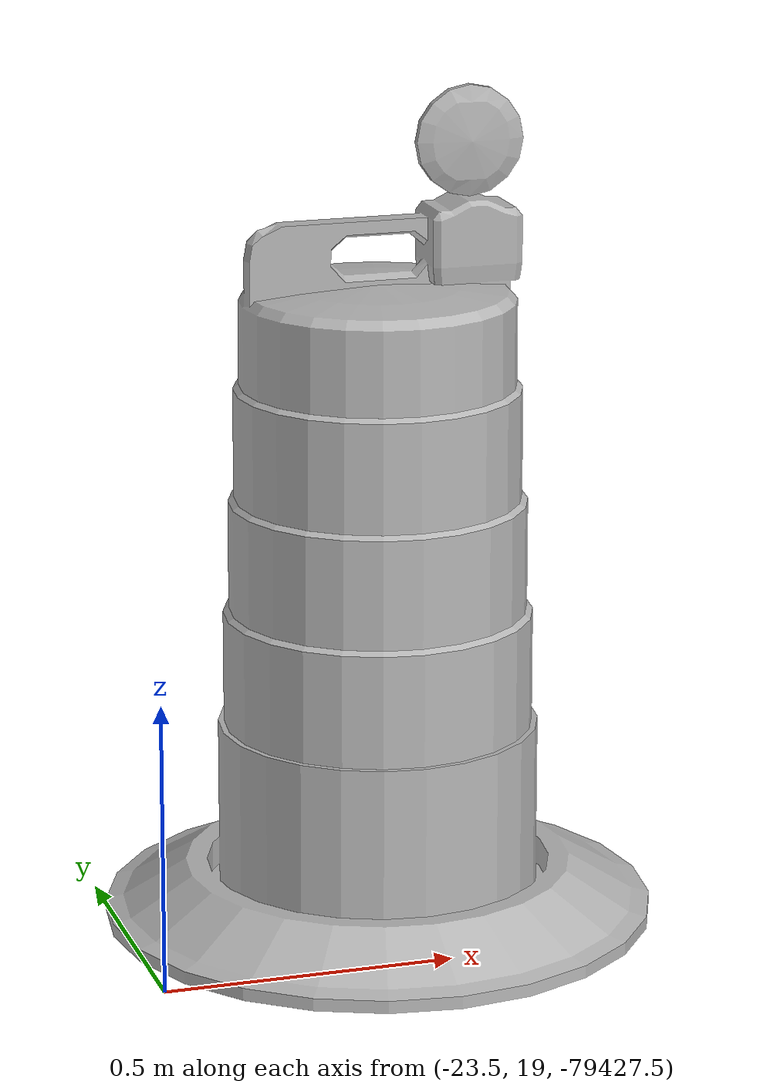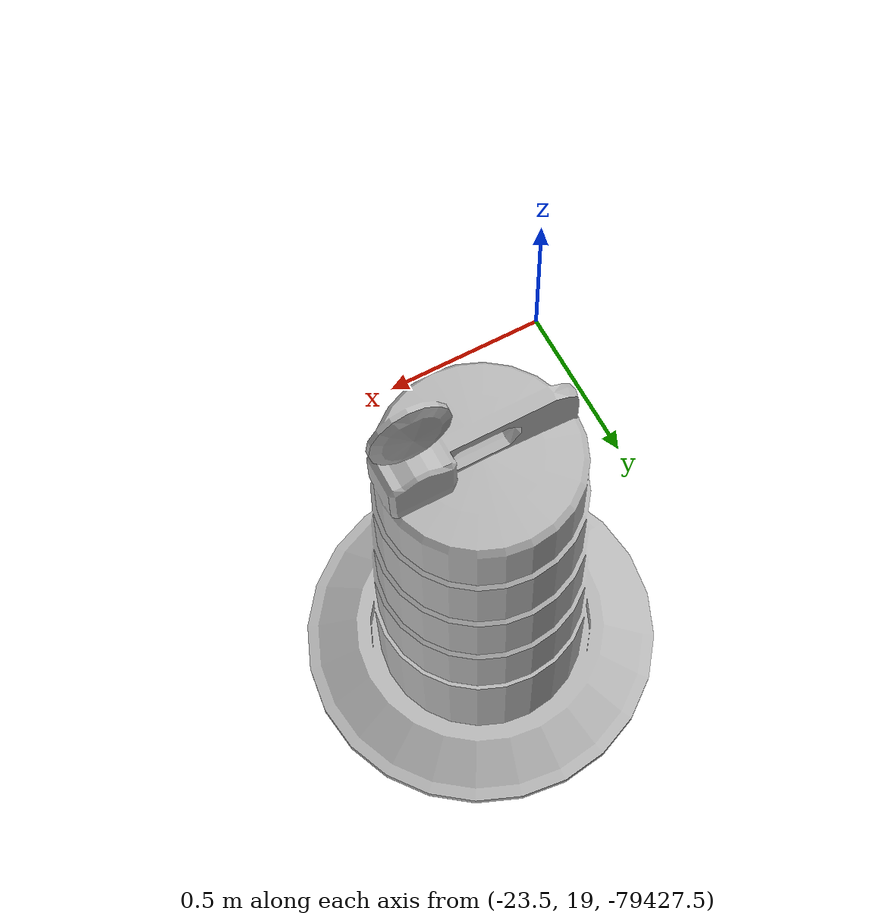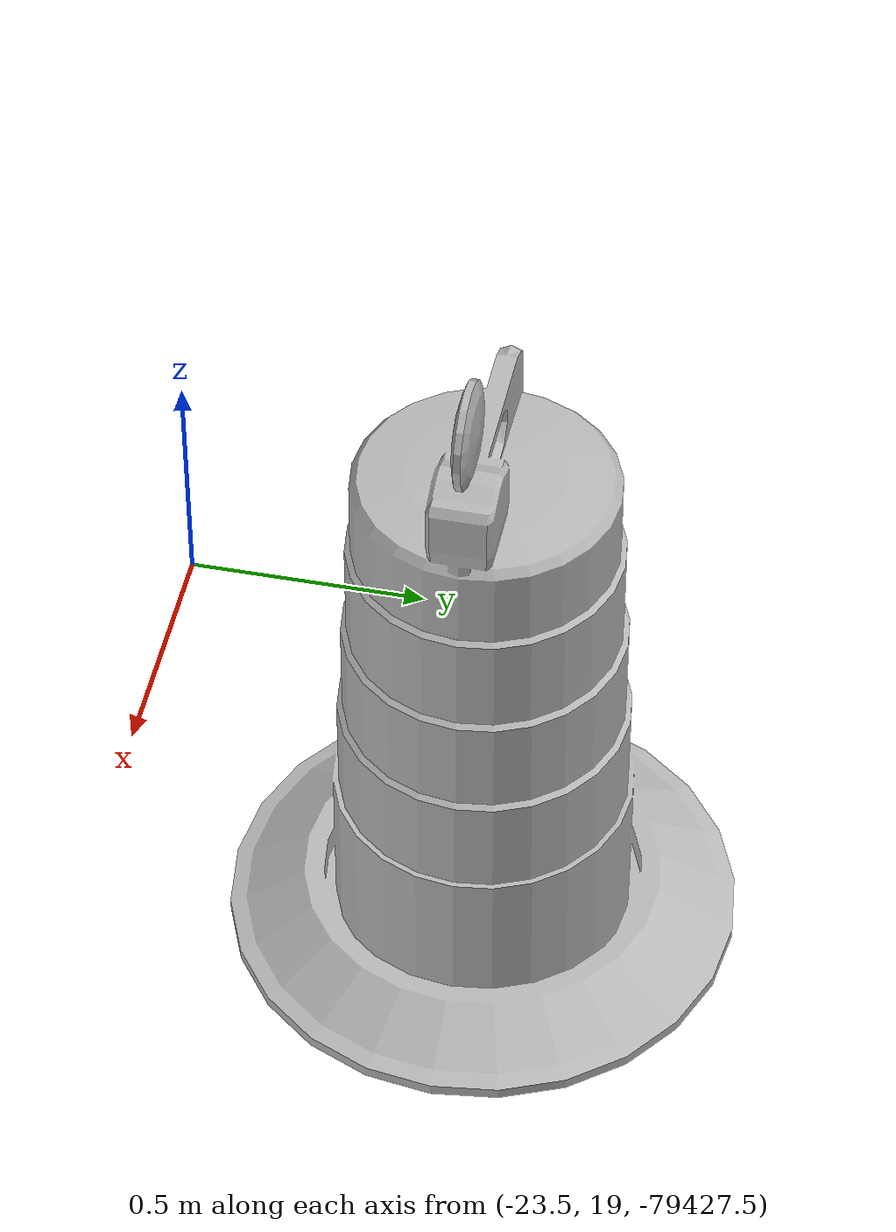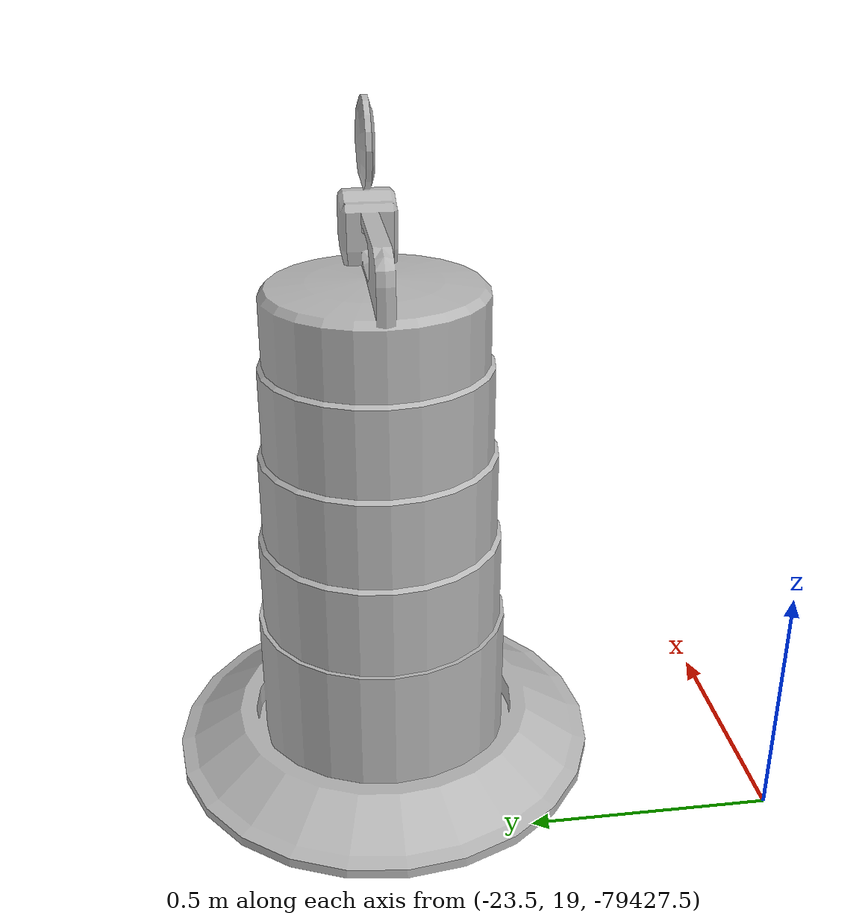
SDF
<sdf version="1.7">
 <world name="IGVC AutoNav">
  <light name="sun" type="directional">
   <pose>0 0 10 0 -0 0</pose>
   <diffuse>0.8 0.8 0.8 1</diffuse>
   <specular>0.2 0.2 0.2 1</specular>
   <attenuation>
    <range>1000</range>
    <constant>0.9</constant>
    <linear>0.01</linear>
    <quadratic>0.001</quadratic>
   </attenuation>
   <direction>-0.5 0.1 -0.9</direction>
   <spot><inner_angle>0</inner_angle><outer_angle>0</outer_angle><falloff>0</falloff></spot>
  </light>
  <model name="asphault_ground_plane">
   <static>1</static>
   <link name="link">
    <collision name="collision">
     <geometry><plane><normal>0 0 1</normal><size>100 100</size></plane></geometry>
     <surface><friction><ode><mu>100</mu><mu2>50</mu2></ode></friction></surface>
    </collision>
    <visual name="visual">
     <cast_shadows>0</cast_shadows>
     <geometry><plane><normal>0 0 1</normal><size>52 52</size></plane></geometry>
     <material>
      <script>
       <uri>/home/abhiyaan-nuc/gazebo_git/src/robot_gz/models/asphault_ground_plane/materials/scripts</uri>
       <uri>/home/abhiyaan-nuc/gazebo_git/src/robot_gz/models/asphault_ground_plane/materials/textures</uri>
       <name>AsphaultPlane/Image</name>
      </script>
     </material>
    </visual>
   </link>
  </model>
  <gravity>0 0 -9.8</gravity>
  <magnetic_field>6e-06 2.3e-05 -4.2e-05</magnetic_field>
  <atmosphere type="adiabatic"/>
  <physics type="ode">
   <max_step_size>0.001</max_step_size>
   <real_time_factor>1</real_time_factor>
   <real_time_update_rate>1000</real_time_update_rate>
  </physics>
  <scene><ambient>0.4 0.4 0.4 1</ambient><background>0.7 0.7 0.7 1</background><shadows>1</shadows></scene>
  <spherical_coordinates>
   <surface_model>EARTH_WGS84</surface_model>
   <latitude_deg>0</latitude_deg>
   <longitude_deg>0</longitude_deg>
   <elevation>0</elevation>
   <heading_deg>0</heading_deg>
  </spherical_coordinates>
  <model name="Construction Barrel">
   <link name="link">
    <inertial>
     <pose>0 0 0.4 0 -0 0</pose>
     <mass>500</mass>
     <inertia><ixx>51.2096</ixx><iyy>51.2096</iyy><izz>25</izz><ixy>0</ixy><ixz>0</ixz><iyz>0</iyz></inertia>
    </inertial>
    <collision name="collision">
     <geometry>
      <mesh>
       <uri>/home/abhiyaan-nuc/gazebo_git/src/models/construction_barrel/meshes/construction_barrel.dae</uri>
      </mesh>
     </geometry>
    </collision>
    <visual name="visual">
     <geometry>
      <mesh>
       <uri>/home/abhiyaan-nuc/gazebo_git/src/robot_gz//models/construction_barrel/meshes/construction_barrel.dae</uri>
      </mesh>
     </geometry>
    </visual>
   </link>
   <pose>-22.8998 19.7492 -79427.7 3e-06 7e-06 -0.000169</pose>
  </model>
  <audio><device>default</device></audio>
 </world>
</sdf>
